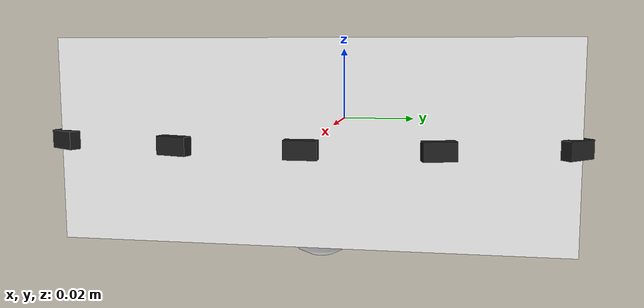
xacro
<?xml version="1.0"?>
<robot xmlns:xacro="https://www.ros.org/wiki/xacro" name="thymio">

    <xacro:include filename="$(find ros_basics_models)/urdf/utils/inertia.xacro" />
    <xacro:include filename="$(find ros_basics_models)/urdf/utils/materials.xacro" />
    <xacro:include filename="$(find ros_basics_models)/urdf/utils/custom_sensors.xacro" />
    <xacro:include filename="$(find ros_basics_exercise)/urdf/thymio_simple.gazebo" />

    <xacro:arg name="left_wheel_mu" default="100.0"/>
    <xacro:property name="left_wheel_mu_p" value="$(arg left_wheel_mu)"/>
    <xacro:arg name="right_wheel_mu" default="100.0"/>
    <xacro:property name="right_wheel_mu_p" value="$(arg right_wheel_mu)"/>
    <xacro:property name="wheel_radius" value="0.022"/>
    <xacro:property name="wheel_len" value="0.015"/>
    <xacro:arg name="mass" default="0.270"/>
    <xacro:property name="mass_p" value="$(arg mass)"/>
    <xacro:property name="body_mass" value="${mass_p * 0.80}"/>
    <xacro:property name="wheel_mass" value="${mass_p * 0.10}"/>

    <link name="base_link">
        <visual>
            <origin xyz="0 0 0"/>
            <geometry>
                <box size="0.11 0.112 0.045"/>
            </geometry>
            <material name="white"/>
        </visual>
        <collision>
            <origin xyz="0 0 0"/>
            <geometry>
                <box size="0.11 0.112 0.045" />
            </geometry>
            <material name="white"/>
        </collision>
        <inertial>
            <mass value="${body_mass}"/>
            <xacro:box_inertia mass="${body_mass}" x="0.11" y="0.112" z='0.45' />
        </inertial>

        <visual>
            <origin xyz="0.038 0 -0.019" rpy="0 0 0"/>
            <geometry>
                <sphere radius="0.01"/>
            </geometry>
            <material name="white"/>
        </visual>
        <collision>
            <origin xyz="0.038 0 -0.019" rpy="0 0 0"/>
            <geometry>
                <sphere radius="0.01"/>
            </geometry>
            <material name="white"/>
        </collision>
    </link>

    <!-- Implement the left wheel -->
    <!-- Implement the joint for the left wheel -->
    <link name="left_wheel_link">
        <visual>
            <origin xyz="0 0 0" rpy="1.5708 0 0"/>
            <geometry>
                <cylinder length="${wheel_len}" radius="${wheel_radius}" />
            </geometry>
            <material name="black"/>
        </visual>
        <collision>
            <origin xyz="0 0 0" rpy="1.5708 0 0" />
            <geometry>
                <cylinder length="${wheel_len}" radius="${wheel_radius}" />
            </geometry>
            <material name="black"/>
        </collision>
        <inertial>
            <mass value="${wheel_mass}"/>
            <xacro:cylinder_inertia mass="${wheel_mass}" h="${wheel_len}" r="${wheel_radius}" />
        </inertial>
    </link>

    <joint name="left_wheel_joint" type="continuous">
        <parent link="base_link"/>
        <child link="left_wheel_link"/>
        <axis rpy="0 0 0" xyz="0 1 0"/>
        <origin xyz="-0.024 0.049 -0.007" rpy="0 0 0"/>
    </joint>

    <!-- Implement the right wheel -->
    <!-- Implement the joint for the right wheel -->
    <link name="right_wheel_link">
        <visual>
            <origin xyz="0 0 0" rpy="1.5708 0 0"/>
            <geometry>
                <cylinder length="${wheel_len}" radius="${wheel_radius}" />
            </geometry>
            <material name="black"/>
        </visual>
        <collision>
            <origin xyz="0 0 0" rpy="1.5708 0 0" />
            <geometry>
                <cylinder length="${wheel_len}" radius="${wheel_radius}" />
            </geometry>
            <material name="black"/>
        </collision>
        <inertial>
            <mass value="${wheel_mass}"/>
            <xacro:cylinder_inertia mass="${wheel_mass}" h="${wheel_len}" r="${wheel_radius}" />
        </inertial>
    </link>

    <joint name="right_wheel_joint" type="continuous">
        <parent link="base_link"/>
        <child link="right_wheel_link"/>
        <axis rpy="0 0 0" xyz="0 1 0"/>
        <origin xyz="-0.024 -0.049 -0.007" rpy="0 0 0"/>
    </joint>

    <!-- Add your sensors using the macro -->
    <!-- Left -->
    <xacro:csensor plink="base_link" id="0" mass="0.001" originrpy="0 0 2.26893" originxyz="-0.003 0 0" jointxyz="0.058 0.055 0" jointrpy="0 0 0" />
    <!-- CL -->
    <xacro:csensor plink="base_link" id="1" mass="0.001" originrpy="0 0 1.8326" originxyz="-0.003 0 0" jointxyz="0.064 0.0275 0" jointrpy="0 0 0" />
    <xacro:csensor plink="base_link" id="2" mass="0.001" originrpy="0 0 1.5708" originxyz="-0.003 0 0" jointxyz="0.066 0 0" jointrpy="0 0 0" />
    <!-- CR -->
    <xacro:csensor plink="base_link" id="3" mass="0.001" originrpy="0 0 1.309" originxyz="-0.003 0 0" jointxyz="0.064 -0.0275 0" jointrpy="0 0 0" />
    <xacro:csensor plink="base_link" id="4" mass="0.001" originrpy="0 0 1.0472" originxyz="-0.003 0 0" jointxyz="0.058 -0.055 0" jointrpy="0 0 0" />
    <!-- BR -->
    <xacro:csensor plink="base_link" id="5" mass="0.001" originrpy="0 0 1.5708" originxyz="-0.003 0 0" jointxyz="-0.056 -0.035 0" jointrpy="0 0 0" />
    <!-- BL -->
    <xacro:csensor plink="base_link" id="6" mass="0.001" originrpy="0 0 1.5708" originxyz="-0.003 0 0" jointxyz="-0.056 0.035 0" jointrpy="0 0 0" />

</robot>

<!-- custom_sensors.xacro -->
<robot xmlns:xacro="https://www.ros.org/wiki/xacro">

    <xacro:property name="id" value="foo"/>
    <xacro:property name="plink" value="foo_parent"/>

    <xacro:property name="jointxyz" value="0 0 0"/>
    <xacro:property name="jointrpy" value="0 0 0"/>
    <xacro:property name="sensor_width" value="0.007" />
    <xacro:property name="sensor_length" value="0.0025" />
    <xacro:property name="sensor_height" value="0.004" />
    <xacro:property name="originrpy" value="0 0 0" />
    <xacro:property name="originxyz" value="0 0 0" />

    <xacro:macro name="csensor" params="plink id mass originrpy originxyz jointxyz jointrpy">
        <link name="sensor_${id}">
            <visual>
                <geometry>
                    <box size="${sensor_width} ${sensor_length} ${sensor_height}" />
                </geometry>
                <material name="black" />
                <origin rpy="${originrpy}" xyz="${originxyz}" />
            </visual>
            <collision>
                <geometry>
                    <box size="${sensor_width} ${sensor_length} ${sensor_height}" />
                </geometry>
                <origin rpy="${originrpy}" xyz="${originxyz}" />
            </collision>
            <inertial>
                <mass value="${mass}" />
                <origin rpy="${originrpy}" xyz="${originxyz}" />
                <xacro:box_inertia mass="${mass}" x="${sensor_length}" y="${sensor_width}" z="${sensor_height}" />
            </inertial>
        </link>
        <joint name="${plink}_sensor_${id}" type="fixed">
            <parent link="${plink}" />
            <child link="sensor_${id}" />
            <origin xyz="${jointxyz}" rpy="${jointrpy}" />
        </joint>
    </xacro:macro>

</robot>
